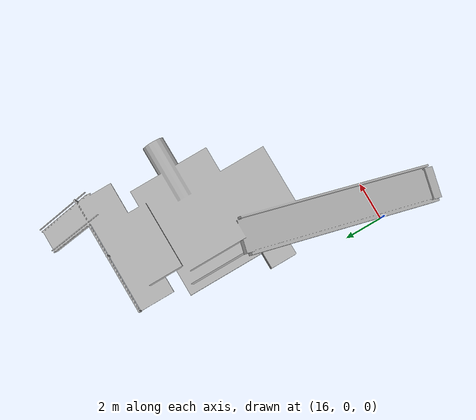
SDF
<?xml version="1.0"?>
<sdf version="1.7">
  <model name="baler">
    <static>true</static>
    <link name="link">
      <visual name="visual">
        <geometry>
          <mesh><uri>model://baler/meshes/baler.obj</uri><scale>1 1 1</scale></mesh>
        </geometry>
      </visual>
      <collision name="collision">
        <geometry>
          <mesh><uri>model://baler/meshes/baler.obj</uri><scale>1 1 1</scale></mesh>
        </geometry>
      </collision>
    </link>
  </model>
</sdf>
